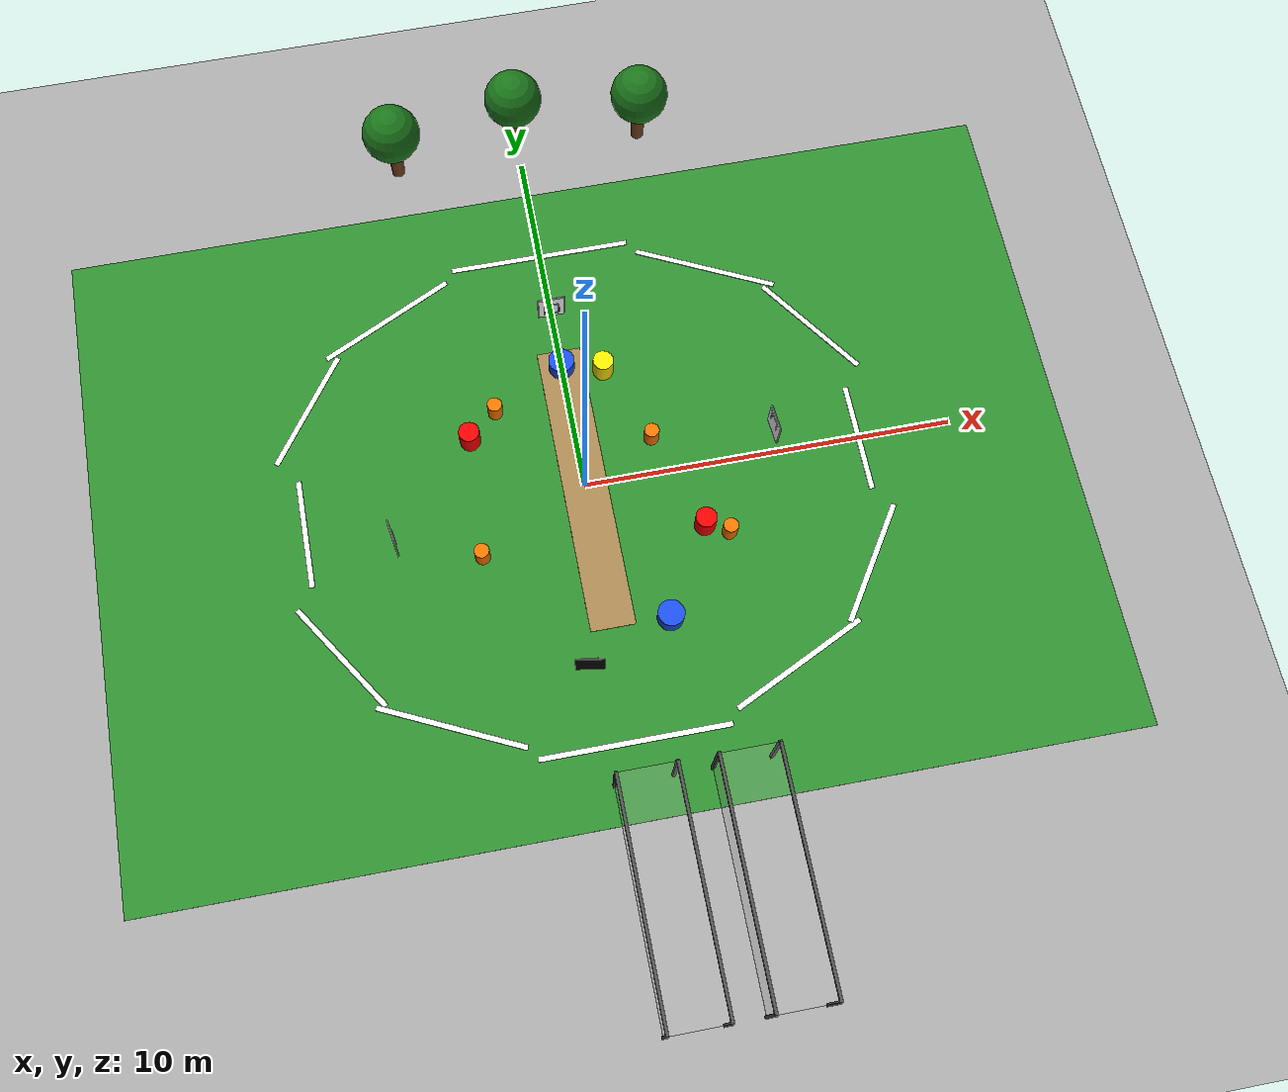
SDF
<sdf version="1.8">
 <world name="pioneer_world">
  <physics name="1ms" type="ignored">
   <max_step_size>0.001</max_step_size>
   <real_time_factor>1.0</real_time_factor>
  </physics>
  <plugin filename="libgz-sim-physics-system" name="gz::sim::systems::Physics"/>
  <plugin filename="libgz-sim-user-commands-system" name="gz::sim::systems::UserCommands"/>
  <plugin filename="libgz-sim-scene-broadcaster-system" name="gz::sim::systems::SceneBroadcaster"/>
  <plugin filename="libgz-sim-imu-system" name="gz::sim::systems::Imu"/>
  <plugin filename="libgz-sim-sensors-system.so" name="gz::sim::systems::Sensors"/>
  <plugin filename="libgz-sim-contact-system" name="gz::sim::systems::Contact"/>
  <light type="directional" name="sun">
   <pose>0 0 10 0 0 0</pose>
   <diffuse>0.8 0.8 0.8 1</diffuse>
   <specular>0.2 0.2 0.2 1</specular>
   <attenuation>
    <range>1000</range>
    <constant>0.9</constant>
    <linear>0.01</linear>
    <quadratic>0.001</quadratic>
   </attenuation>
   <direction>-0.5 0.1 -0.9</direction>
  </light>
  <model name="ground_plane">
   <static>true</static>
   <link name="link">
    <collision name="collision"><geometry><plane><normal>0 0 1</normal></plane></geometry></collision>
    <visual name="visual">
     <geometry><plane><normal>0 0 1</normal><size>100 100</size></plane></geometry>
     <material>
      <ambient>0.65 0.65 0.65 1</ambient>
      <diffuse>0.65 0.65 0.65 1</diffuse>
      <specular>0.2 0.2 0.2 1</specular>
     </material>
    </visual>
   </link>
  </model>
  <model name="grass_field">
   <static>true</static>
   <pose>0 0 0.01 0 0 0</pose>
   <link name="field_link">
    <visual name="field_visual">
     <geometry><box><size>26 18 0.02</size></box></geometry>
     <material>
      <ambient>0.18 0.55 0.18 1</ambient>
      <diffuse>0.18 0.55 0.18 1</diffuse>
      <specular>0.05 0.05 0.05 1</specular>
     </material>
    </visual>
   </link>
  </model>
  <model name="cricket_pitch_strip">
   <static>true</static>
   <pose>0 0 0.02 0 0 0</pose>
   <link name="pitch_link">
    <visual name="pitch_visual">
     <geometry><box><size>1.2 8.0 0.03</size></box></geometry>
     <material>
      <ambient>0.65 0.52 0.32 1</ambient>
      <diffuse>0.65 0.52 0.32 1</diffuse>
      <specular>0.1 0.1 0.1 1</specular>
     </material>
    </visual>
   </link>
  </model>
  <model name="oval_line_1">
   <static>true</static>
   <pose>0 7 0.02 0 0 0</pose>
   <link name="link">
    <visual name="visual">
     <geometry><box><size>5.0 0.15 0.02</size></box></geometry>
     <material><ambient>1 1 1 1</ambient><diffuse>1 1 1 1</diffuse><specular>0.2 0.2 0.2 1</specular></material>
    </visual>
   </link>
  </model>
  <model name="oval_line_2">
   <static>true</static>
   <pose>4.5 5.8 0.02 0 0 -0.45</pose>
   <link name="link">
    <visual name="visual">
     <geometry><box><size>4.0 0.15 0.02</size></box></geometry>
     <material><ambient>1 1 1 1</ambient><diffuse>1 1 1 1</diffuse><specular>0.2 0.2 0.2 1</specular></material>
    </visual>
   </link>
  </model>
  <model name="oval_line_3">
   <static>true</static>
   <pose>7 3.5 0.02 0 0 -0.95</pose>
   <link name="link">
    <visual name="visual">
     <geometry><box><size>3.5 0.15 0.02</size></box></geometry>
     <material><ambient>1 1 1 1</ambient><diffuse>1 1 1 1</diffuse><specular>0.2 0.2 0.2 1</specular></material>
    </visual>
   </link>
  </model>
  <model name="oval_line_4">
   <static>true</static>
   <pose>7.5 0 0.02 0 0 -1.57</pose>
   <link name="link">
    <visual name="visual">
     <geometry><box><size>3.0 0.15 0.02</size></box></geometry>
     <material><ambient>1 1 1 1</ambient><diffuse>1 1 1 1</diffuse><specular>0.2 0.2 0.2 1</specular></material>
    </visual>
   </link>
  </model>
  <model name="oval_line_5">
   <static>true</static>
   <pose>7 -3.5 0.02 0 0 -2.15</pose>
   <link name="link">
    <visual name="visual">
     <geometry><box><size>3.5 0.15 0.02</size></box></geometry>
     <material><ambient>1 1 1 1</ambient><diffuse>1 1 1 1</diffuse><specular>0.2 0.2 0.2 1</specular></material>
    </visual>
   </link>
  </model>
  <model name="oval_line_6">
   <static>true</static>
   <pose>4.5 -5.8 0.02 0 0 -2.7</pose>
   <link name="link">
    <visual name="visual">
     <geometry><box><size>4.0 0.15 0.02</size></box></geometry>
     <material><ambient>1 1 1 1</ambient><diffuse>1 1 1 1</diffuse><specular>0.2 0.2 0.2 1</specular></material>
    </visual>
   </link>
  </model>
  <model name="oval_line_7">
   <static>true</static>
   <pose>0 -7 0.02 0 0 0</pose>
   <link name="link">
    <visual name="visual">
     <geometry><box><size>5.0 0.15 0.02</size></box></geometry>
     <material><ambient>1 1 1 1</ambient><diffuse>1 1 1 1</diffuse><specular>0.2 0.2 0.2 1</specular></material>
    </visual>
   </link>
  </model>
  <model name="oval_line_8">
   <static>true</static>
   <pose>-4.5 -5.8 0.02 0 0 2.7</pose>
   <link name="link">
    <visual name="visual">
     <geometry><box><size>4.0 0.15 0.02</size></box></geometry>
     <material><ambient>1 1 1 1</ambient><diffuse>1 1 1 1</diffuse><specular>0.2 0.2 0.2 1</specular></material>
    </visual>
   </link>
  </model>
  <model name="oval_line_9">
   <static>true</static>
   <pose>-7 -3.5 0.02 0 0 2.15</pose>
   <link name="link">
    <visual name="visual">
     <geometry><box><size>3.5 0.15 0.02</size></box></geometry>
     <material><ambient>1 1 1 1</ambient><diffuse>1 1 1 1</diffuse><specular>0.2 0.2 0.2 1</specular></material>
    </visual>
   </link>
  </model>
  <model name="oval_line_10">
   <static>true</static>
   <pose>-7.5 0 0.02 0 0 1.57</pose>
   <link name="link">
    <visual name="visual">
     <geometry><box><size>3.0 0.15 0.02</size></box></geometry>
     <material><ambient>1 1 1 1</ambient><diffuse>1 1 1 1</diffuse><specular>0.2 0.2 0.2 1</specular></material>
    </visual>
   </link>
  </model>
  <model name="oval_line_11">
   <static>true</static>
   <pose>-7 3.5 0.02 0 0 0.95</pose>
   <link name="link">
    <visual name="visual">
     <geometry><box><size>3.5 0.15 0.02</size></box></geometry>
     <material><ambient>1 1 1 1</ambient><diffuse>1 1 1 1</diffuse><specular>0.2 0.2 0.2 1</specular></material>
    </visual>
   </link>
  </model>
  <model name="oval_line_12">
   <static>true</static>
   <pose>-4.5 5.8 0.02 0 0 0.45</pose>
   <link name="link">
    <visual name="visual">
     <geometry><box><size>4.0 0.15 0.02</size></box></geometry>
     <material><ambient>1 1 1 1</ambient><diffuse>1 1 1 1</diffuse><specular>0.2 0.2 0.2 1</specular></material>
    </visual>
   </link>
  </model>
  <model name="cone_1">
   <static>true</static>
   <pose>2 1 0.3 0 0 0</pose>
   <link name="link">
    <visual name="visual">
     <geometry><cylinder><radius>0.2</radius><length>0.6</length></cylinder></geometry>
     <material>
      <ambient>1.0 0.45 0.0 1</ambient>
      <diffuse>1.0 0.45 0.0 1</diffuse>
      <specular>0.2 0.2 0.2 1</specular>
     </material>
    </visual>
    <collision name="collision">
     <geometry><cylinder><radius>0.2</radius><length>0.6</length></cylinder></geometry>
    </collision>
   </link>
  </model>
  <model name="cone_2">
   <static>true</static>
   <pose>-2 2.5 0.3 0 0 0</pose>
   <link name="link">
    <visual name="visual">
     <geometry><cylinder><radius>0.2</radius><length>0.6</length></cylinder></geometry>
     <material>
      <ambient>1.0 0.45 0.0 1</ambient>
      <diffuse>1.0 0.45 0.0 1</diffuse>
      <specular>0.2 0.2 0.2 1</specular>
     </material>
    </visual>
    <collision name="collision">
     <geometry><cylinder><radius>0.2</radius><length>0.6</length></cylinder></geometry>
    </collision>
   </link>
  </model>
  <model name="cone_3">
   <static>true</static>
   <pose>3.5 -2 0.3 0 0 0</pose>
   <link name="link">
    <visual name="visual">
     <geometry><cylinder><radius>0.2</radius><length>0.6</length></cylinder></geometry>
     <material>
      <ambient>1.0 0.45 0.0 1</ambient>
      <diffuse>1.0 0.45 0.0 1</diffuse>
      <specular>0.2 0.2 0.2 1</specular>
     </material>
    </visual>
    <collision name="collision">
     <geometry><cylinder><radius>0.2</radius><length>0.6</length></cylinder></geometry>
    </collision>
   </link>
  </model>
  <model name="cone_4">
   <static>true</static>
   <pose>-3 -1.5 0.3 0 0 0</pose>
   <link name="link">
    <visual name="visual">
     <geometry><cylinder><radius>0.2</radius><length>0.6</length></cylinder></geometry>
     <material>
      <ambient>1.0 0.45 0.0 1</ambient>
      <diffuse>1.0 0.45 0.0 1</diffuse>
      <specular>0.2 0.2 0.2 1</specular>
     </material>
    </visual>
    <collision name="collision">
     <geometry><cylinder><radius>0.2</radius><length>0.6</length></cylinder></geometry>
    </collision>
   </link>
  </model>
  <model name="bucket_1">
   <static>true</static>
   <pose>0 3.5 0.25 0 0 0</pose>
   <link name="link">
    <visual name="visual">
     <geometry><cylinder><radius>0.35</radius><length>0.5</length></cylinder></geometry>
     <material>
      <ambient>0.1 0.3 0.9 1</ambient>
      <diffuse>0.1 0.3 0.9 1</diffuse>
      <specular>0.2 0.2 0.2 1</specular>
     </material>
    </visual>
    <collision name="collision">
     <geometry><cylinder><radius>0.35</radius><length>0.5</length></cylinder></geometry>
    </collision>
   </link>
  </model>
  <model name="bucket_2">
   <static>true</static>
   <pose>1.5 -4 0.25 0 0 0</pose>
   <link name="link">
    <visual name="visual">
     <geometry><cylinder><radius>0.35</radius><length>0.5</length></cylinder></geometry>
     <material>
      <ambient>0.1 0.3 0.9 1</ambient>
      <diffuse>0.1 0.3 0.9 1</diffuse>
      <specular>0.2 0.2 0.2 1</specular>
     </material>
    </visual>
    <collision name="collision">
     <geometry><cylinder><radius>0.35</radius><length>0.5</length></cylinder></geometry>
    </collision>
   </link>
  </model>
  <model name="tree_1">
   <static>true</static>
   <pose>-3.5 10.5 0 0 0 0</pose>
   <link name="link">
    <visual name="trunk_visual">
     <pose>0 0 0.75 0 0 0</pose>
     <geometry><cylinder><radius>0.18</radius><length>1.5</length></cylinder></geometry>
     <material><ambient>0.45 0.26 0.12 1</ambient><diffuse>0.45 0.26 0.12 1</diffuse></material>
    </visual>
    <visual name="leaves_visual">
     <pose>0 0 1.9 0 0 0</pose>
     <geometry><sphere><radius>0.8</radius></sphere></geometry>
     <material><ambient>0.1 0.45 0.1 1</ambient><diffuse>0.1 0.45 0.1 1</diffuse></material>
    </visual>
    <collision name="collision">
     <pose>0 0 1.2 0 0 0</pose>
     <geometry><cylinder><radius>0.5</radius><length>2.4</length></cylinder></geometry>
    </collision>
   </link>
  </model>
  <model name="tree_2">
   <static>true</static>
   <pose>0 11 0 0 0 0</pose>
   <link name="link">
    <visual name="trunk_visual">
     <pose>0 0 0.75 0 0 0</pose>
     <geometry><cylinder><radius>0.18</radius><length>1.5</length></cylinder></geometry>
     <material><ambient>0.45 0.26 0.12 1</ambient><diffuse>0.45 0.26 0.12 1</diffuse></material>
    </visual>
    <visual name="leaves_visual">
     <pose>0 0 1.9 0 0 0</pose>
     <geometry><sphere><radius>0.8</radius></sphere></geometry>
     <material><ambient>0.1 0.45 0.1 1</ambient><diffuse>0.1 0.45 0.1 1</diffuse></material>
    </visual>
    <collision name="collision">
     <pose>0 0 1.2 0 0 0</pose>
     <geometry><cylinder><radius>0.5</radius><length>2.4</length></cylinder></geometry>
    </collision>
   </link>
  </model>
  <model name="tree_3">
   <static>true</static>
   <pose>3.5 10.5 0 0 0 0</pose>
   <link name="link">
    <visual name="trunk_visual">
     <pose>0 0 0.75 0 0 0</pose>
     <geometry><cylinder><radius>0.18</radius><length>1.5</length></cylinder></geometry>
     <material><ambient>0.45 0.26 0.12 1</ambient><diffuse>0.45 0.26 0.12 1</diffuse></material>
    </visual>
    <visual name="leaves_visual">
     <pose>0 0 1.9 0 0 0</pose>
     <geometry><sphere><radius>0.8</radius></sphere></geometry>
     <material><ambient>0.1 0.45 0.1 1</ambient><diffuse>0.1 0.45 0.1 1</diffuse></material>
    </visual>
    <collision name="collision">
     <pose>0 0 1.2 0 0 0</pose>
     <geometry><cylinder><radius>0.5</radius><length>2.4</length></cylinder></geometry>
    </collision>
   </link>
  </model>
  <model name="batting_cage_1">
   <static>true</static>
   <pose>0 -11 0 0 0 0</pose>
   <link name="link">
    <visual name="lane_visual">
     <pose>0 0 1.0 0 0 0</pose>
     <geometry><box><size>1.5 6.0 2.0</size></box></geometry>
     <material><ambient>0.7 0.7 0.7 0.15</ambient><diffuse>0.7 0.7 0.7 0.15</diffuse></material>
    </visual>
    <visual name="post_front_left">
     <pose>-0.75 3.0 1.0 0 0 0</pose>
     <geometry><box><size>0.08 0.08 2.0</size></box></geometry>
     <material><ambient>0.3 0.3 0.3 1</ambient><diffuse>0.3 0.3 0.3 1</diffuse></material>
    </visual>
    <visual name="post_front_right">
     <pose>0.75 3.0 1.0 0 0 0</pose>
     <geometry><box><size>0.08 0.08 2.0</size></box></geometry>
     <material><ambient>0.3 0.3 0.3 1</ambient><diffuse>0.3 0.3 0.3 1</diffuse></material>
    </visual>
    <visual name="post_back_left">
     <pose>-0.75 -3.0 1.0 0 0 0</pose>
     <geometry><box><size>0.08 0.08 2.0</size></box></geometry>
     <material><ambient>0.3 0.3 0.3 1</ambient><diffuse>0.3 0.3 0.3 1</diffuse></material>
    </visual>
    <visual name="post_back_right">
     <pose>0.75 -3.0 1.0 0 0 0</pose>
     <geometry><box><size>0.08 0.08 2.0</size></box></geometry>
     <material><ambient>0.3 0.3 0.3 1</ambient><diffuse>0.3 0.3 0.3 1</diffuse></material>
    </visual>
    <visual name="top_bar_left">
     <pose>-0.75 0 2.0 0 0 0</pose>
     <geometry><box><size>0.08 6.0 0.08</size></box></geometry>
     <material><ambient>0.3 0.3 0.3 1</ambient><diffuse>0.3 0.3 0.3 1</diffuse></material>
    </visual>
    <visual name="top_bar_right">
     <pose>0.75 0 2.0 0 0 0</pose>
     <geometry><box><size>0.08 6.0 0.08</size></box></geometry>
     <material><ambient>0.3 0.3 0.3 1</ambient><diffuse>0.3 0.3 0.3 1</diffuse></material>
    </visual>
    <collision name="collision">
     <pose>0 0 1.0 0 0 0</pose>
     <geometry><box><size>1.5 6.0 2.0</size></box></geometry>
    </collision>
   </link>
  </model>
  <model name="batting_cage_2">
   <static>true</static>
   <pose>2.5 -11 0 0 0 0</pose>
   <link name="link">
    <visual name="lane_visual">
     <pose>0 0 1.0 0 0 0</pose>
     <geometry><box><size>1.5 6.0 2.0</size></box></geometry>
     <material><ambient>0.7 0.7 0.7 0.15</ambient><diffuse>0.7 0.7 0.7 0.15</diffuse></material>
    </visual>
    <visual name="post_front_left">
     <pose>-0.75 3.0 1.0 0 0 0</pose>
     <geometry><box><size>0.08 0.08 2.0</size></box></geometry>
     <material><ambient>0.3 0.3 0.3 1</ambient><diffuse>0.3 0.3 0.3 1</diffuse></material>
    </visual>
    <visual name="post_front_right">
     <pose>0.75 3.0 1.0 0 0 0</pose>
     <geometry><box><size>0.08 0.08 2.0</size></box></geometry>
     <material><ambient>0.3 0.3 0.3 1</ambient><diffuse>0.3 0.3 0.3 1</diffuse></material>
    </visual>
    <visual name="post_back_left">
     <pose>-0.75 -3.0 1.0 0 0 0</pose>
     <geometry><box><size>0.08 0.08 2.0</size></box></geometry>
     <material><ambient>0.3 0.3 0.3 1</ambient><diffuse>0.3 0.3 0.3 1</diffuse></material>
    </visual>
    <visual name="post_back_right">
     <pose>0.75 -3.0 1.0 0 0 0</pose>
     <geometry><box><size>0.08 0.08 2.0</size></box></geometry>
     <material><ambient>0.3 0.3 0.3 1</ambient><diffuse>0.3 0.3 0.3 1</diffuse></material>
    </visual>
    <visual name="top_bar_left">
     <pose>-0.75 0 2.0 0 0 0</pose>
     <geometry><box><size>0.08 6.0 0.08</size></box></geometry>
     <material><ambient>0.3 0.3 0.3 1</ambient><diffuse>0.3 0.3 0.3 1</diffuse></material>
    </visual>
    <visual name="top_bar_right">
     <pose>0.75 0 2.0 0 0 0</pose>
     <geometry><box><size>0.08 6.0 0.08</size></box></geometry>
     <material><ambient>0.3 0.3 0.3 1</ambient><diffuse>0.3 0.3 0.3 1</diffuse></material>
    </visual>
    <collision name="collision">
     <pose>0 0 1.0 0 0 0</pose>
     <geometry><box><size>1.5 6.0 2.0</size></box></geometry>
    </collision>
   </link>
  </model>
  <model name="red_obstacle_1">
   <static>true</static>
   <pose>-2.8 1.8 0.35 0 0 0</pose>
   <link name="link">
    <visual name="visual">
     <geometry><cylinder><radius>0.28</radius><length>0.70</length></cylinder></geometry>
     <material><ambient>1 0 0 1</ambient><diffuse>1 0 0 1</diffuse><specular>0.2 0.2 0.2 1</specular></material>
    </visual>
    <collision name="collision">
     <geometry><cylinder><radius>0.28</radius><length>0.70</length></cylinder></geometry>
    </collision>
   </link>
  </model>
  <model name="red_obstacle_2">
   <static>true</static>
   <pose>2.9 -1.7 0.35 0 0 0</pose>
   <link name="link">
    <visual name="visual">
     <geometry><cylinder><radius>0.28</radius><length>0.70</length></cylinder></geometry>
     <material><ambient>1 0 0 1</ambient><diffuse>1 0 0 1</diffuse><specular>0.2 0.2 0.2 1</specular></material>
    </visual>
    <collision name="collision">
     <geometry><cylinder><radius>0.28</radius><length>0.70</length></cylinder></geometry>
    </collision>
   </link>
  </model>
  <model name="yellow_obstacle_1">
   <static>true</static>
   <pose>1.1 3.2 0.35 0 0 0</pose>
   <link name="link">
    <visual name="visual">
     <geometry><cylinder><radius>0.28</radius><length>0.70</length></cylinder></geometry>
     <material>
      <ambient>1 0.9 0 1</ambient>
      <diffuse>1 0.9 0 1</diffuse>
      <specular>0.2 0.2 0.2 1</specular>
     </material>
    </visual>
    <collision name="collision">
     <geometry><cylinder><radius>0.28</radius><length>0.70</length></cylinder></geometry>
    </collision>
   </link>
  </model>
  <model name="greek_sign_north_omega">
   <static>true</static>
   <pose>0 5.0 0 0 0 -1.5708</pose>
   <link name="link">
    <visual name="white_paper_board">
     <pose>0 0 0.75 0 0 0</pose>
     <geometry><box><size>0.03 0.70 0.90</size></box></geometry>
     <material><ambient>1 1 1 1</ambient><diffuse>1 1 1 1</diffuse><specular>0.15 0.15 0.15 1</specular></material>
    </visual>
    <visual name="black_backing_frame">
     <pose>-0.01 0 0.75 0 0 0</pose>
     <geometry><box><size>0.02 0.76 0.96</size></box></geometry>
     <material><ambient>0.02 0.02 0.02 1</ambient><diffuse>0.02 0.02 0.02 1</diffuse></material>
    </visual>
    <visual name="letter_stroke_1">
     <pose>0.031 -0.19 0.7 0 0 0</pose>
     <geometry><box><size>0.012 0.05 0.45</size></box></geometry>
     <material><ambient>0 0 0 1</ambient><diffuse>0 0 0 1</diffuse><specular>0 0 0 1</specular></material>
    </visual>
    <visual name="letter_stroke_2">
     <pose>0.031 0.19 0.7 0 0 0</pose>
     <geometry><box><size>0.012 0.05 0.45</size></box></geometry>
     <material><ambient>0 0 0 1</ambient><diffuse>0 0 0 1</diffuse><specular>0 0 0 1</specular></material>
    </visual>
    <visual name="letter_stroke_3">
     <pose>0.031 -0.11 0.48 0 0 0</pose>
     <geometry><box><size>0.012 0.16 0.05</size></box></geometry>
     <material><ambient>0 0 0 1</ambient><diffuse>0 0 0 1</diffuse><specular>0 0 0 1</specular></material>
    </visual>
    <visual name="letter_stroke_4">
     <pose>0.031 0.11 0.48 0 0 0</pose>
     <geometry><box><size>0.012 0.16 0.05</size></box></geometry>
     <material><ambient>0 0 0 1</ambient><diffuse>0 0 0 1</diffuse><specular>0 0 0 1</specular></material>
    </visual>
    <visual name="letter_stroke_5">
     <pose>0.031 0.0 0.94 0 0 0</pose>
     <geometry><box><size>0.012 0.38 0.05</size></box></geometry>
     <material><ambient>0 0 0 1</ambient><diffuse>0 0 0 1</diffuse><specular>0 0 0 1</specular></material>
    </visual>
    <collision name="collision">
     <pose>0 0 0.75 0 0 0</pose>
     <geometry><box><size>0.05 0.75 0.95</size></box></geometry>
    </collision>
   </link>
  </model>
  <model name="greek_sign_east_pi">
   <static>true</static>
   <pose>5.2 0.5 0 0 0 -3.0457</pose>
   <link name="link">
    <visual name="white_paper_board">
     <pose>0 0 0.75 0 0 0</pose>
     <geometry><box><size>0.03 0.70 0.90</size></box></geometry>
     <material><ambient>1 1 1 1</ambient><diffuse>1 1 1 1</diffuse><specular>0.15 0.15 0.15 1</specular></material>
    </visual>
    <visual name="black_backing_frame">
     <pose>-0.01 0 0.75 0 0 0</pose>
     <geometry><box><size>0.02 0.76 0.96</size></box></geometry>
     <material><ambient>0.02 0.02 0.02 1</ambient><diffuse>0.02 0.02 0.02 1</diffuse></material>
    </visual>
    <visual name="letter_stroke_1">
     <pose>0.031 -0.18 1.0 0 0 0</pose>
     <geometry><box><size>0.012 0.05 0.42</size></box></geometry>
     <material><ambient>0 0 0 1</ambient><diffuse>0 0 0 1</diffuse><specular>0 0 0 1</specular></material>
    </visual>
    <visual name="letter_stroke_2">
     <pose>0.031 0.18 1.0 0 0 0</pose>
     <geometry><box><size>0.012 0.05 0.42</size></box></geometry>
     <material><ambient>0 0 0 1</ambient><diffuse>0 0 0 1</diffuse><specular>0 0 0 1</specular></material>
    </visual>
    <visual name="letter_stroke_3">
     <pose>0.031 0.0 1.18 0 0 0</pose>
     <geometry><box><size>0.012 0.5 0.05</size></box></geometry>
     <material><ambient>0 0 0 1</ambient><diffuse>0 0 0 1</diffuse><specular>0 0 0 1</specular></material>
    </visual>
    <collision name="collision">
     <pose>0 0 0.75 0 0 0</pose>
     <geometry><box><size>0.05 0.75 0.95</size></box></geometry>
    </collision>
   </link>
  </model>
  <model name="greek_sign_south_delta">
   <static>true</static>
   <pose>-0.8 -5.0 0 0 0 1.4121</pose>
   <link name="link">
    <visual name="white_paper_board">
     <pose>0 0 0.75 0 0 0</pose>
     <geometry><box><size>0.03 0.70 0.90</size></box></geometry>
     <material><ambient>1 1 1 1</ambient><diffuse>1 1 1 1</diffuse><specular>0.15 0.15 0.15 1</specular></material>
    </visual>
    <visual name="black_backing_frame">
     <pose>-0.01 0 0.75 0 0 0</pose>
     <geometry><box><size>0.02 0.76 0.96</size></box></geometry>
     <material><ambient>0.02 0.02 0.02 1</ambient><diffuse>0.02 0.02 0.02 1</diffuse></material>
    </visual>
    <visual name="letter_stroke_1">
     <pose>0.031 0.0 1.17 0 0 0.0</pose>
     <geometry><box><size>0.012 0.5 0.05</size></box></geometry>
     <material><ambient>0 0 0 1</ambient><diffuse>0 0 0 1</diffuse><specular>0 0 0 1</specular></material>
    </visual>
    <visual name="letter_stroke_2">
     <pose>0.031 -0.17 0.9299999999999999 0 0 0.55</pose>
     <geometry><box><size>0.012 0.05 0.55</size></box></geometry>
     <material><ambient>0 0 0 1</ambient><diffuse>0 0 0 1</diffuse><specular>0 0 0 1</specular></material>
    </visual>
    <visual name="letter_stroke_3">
     <pose>0.031 0.17 0.9299999999999999 0 0 -0.55</pose>
     <geometry><box><size>0.012 0.05 0.55</size></box></geometry>
     <material><ambient>0 0 0 1</ambient><diffuse>0 0 0 1</diffuse><specular>0 0 0 1</specular></material>
    </visual>
    <collision name="collision">
     <pose>0 0 0.75 0 0 0</pose>
     <geometry><box><size>0.05 0.75 0.95</size></box></geometry>
    </collision>
   </link>
  </model>
  <model name="greek_sign_west_lambda">
   <static>true</static>
   <pose>-5.2 -0.8 0 0 0 0.1526</pose>
   <link name="link">
    <visual name="white_paper_board">
     <pose>0 0 0.75 0 0 0</pose>
     <geometry><box><size>0.03 0.70 0.90</size></box></geometry>
     <material><ambient>1 1 1 1</ambient><diffuse>1 1 1 1</diffuse><specular>0.15 0.15 0.15 1</specular></material>
    </visual>
    <visual name="black_backing_frame">
     <pose>-0.01 0 0.75 0 0 0</pose>
     <geometry><box><size>0.02 0.76 0.96</size></box></geometry>
     <material><ambient>0.02 0.02 0.02 1</ambient><diffuse>0.02 0.02 0.02 1</diffuse></material>
    </visual>
    <visual name="letter_stroke_1">
     <pose>0.031 -0.11 0.83 0 0 -0.38</pose>
     <geometry><box><size>0.012 0.05 0.58</size></box></geometry>
     <material><ambient>0 0 0 1</ambient><diffuse>0 0 0 1</diffuse><specular>0 0 0 1</specular></material>
    </visual>
    <visual name="letter_stroke_2">
     <pose>0.031 0.11 0.83 0 0 0.38</pose>
     <geometry><box><size>0.012 0.05 0.58</size></box></geometry>
     <material><ambient>0 0 0 1</ambient><diffuse>0 0 0 1</diffuse><specular>0 0 0 1</specular></material>
    </visual>
    <collision name="collision">
     <pose>0 0 0.75 0 0 0</pose>
     <geometry><box><size>0.05 0.75 0.95</size></box></geometry>
    </collision>
   </link>
  </model>
 </world>
</sdf>
